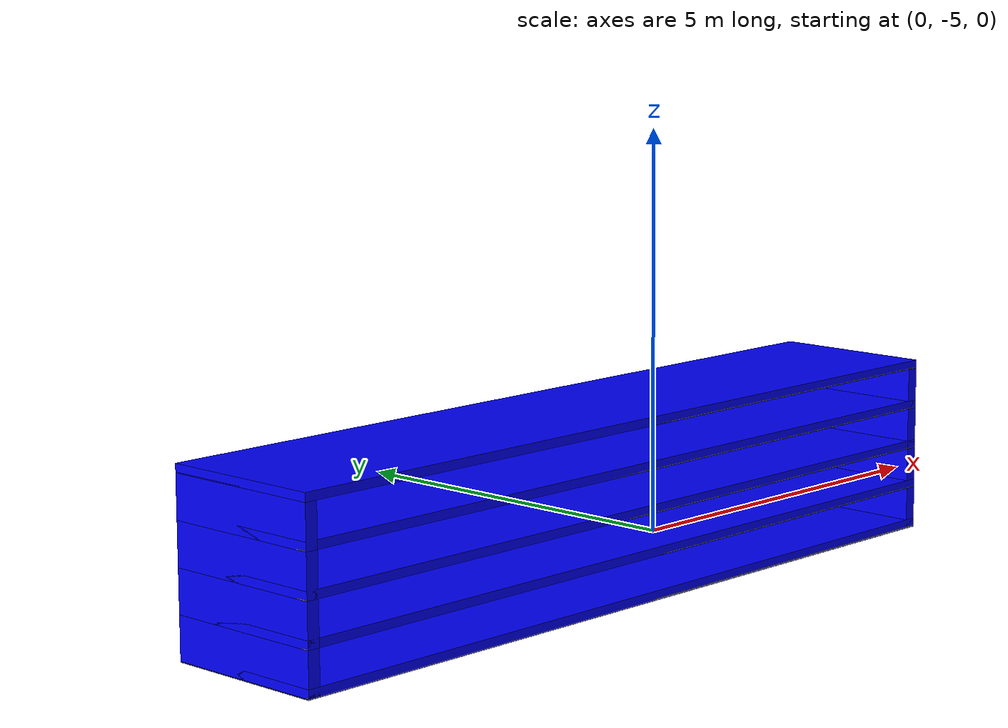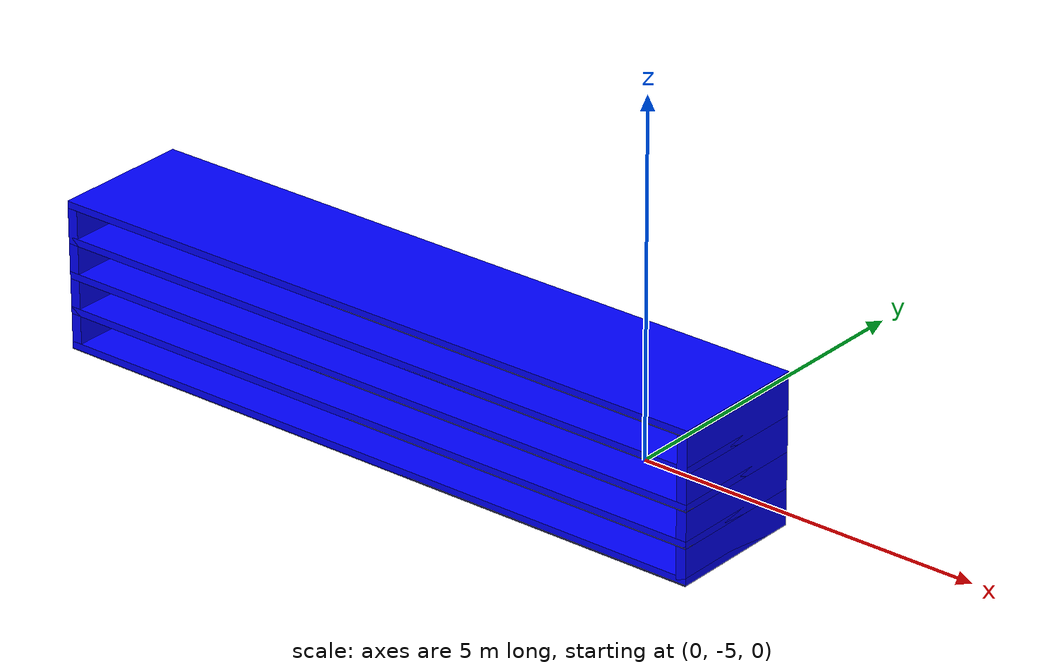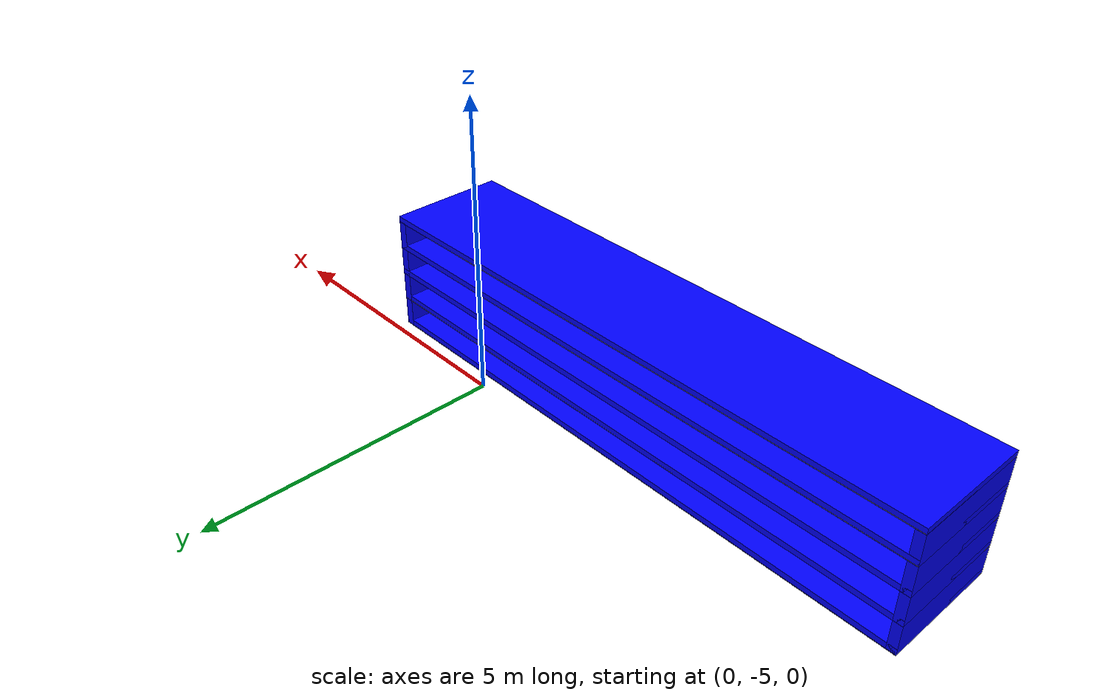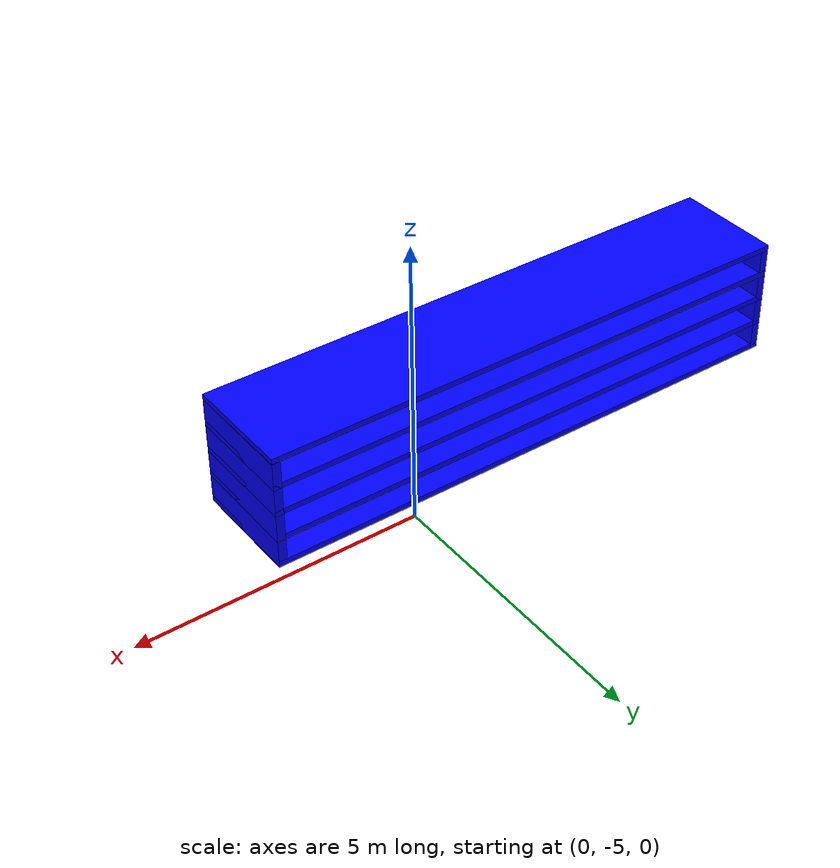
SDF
<?xml version='1.0'?>
<sdf version='1.6'>
  <model name='blue_shelf'>
    <pose frame=''>-2.626 -6.234 0 0 -0 0</pose>
    <link name='Floor_18'>
      <collision name='Floor_18_Collision'>
        <geometry>
          <box>
            <size>10 2 0.1</size>
          </box>
        </geometry>
        <pose frame=''>0 0 0.05 0 -0 0</pose>
      </collision>
      <visual name='Floor_18_Visual'>
        <pose frame=''>0 0 0.05 0 -0 0</pose>
        <geometry>
          <box>
            <size>10 2 0.1</size>
          </box>
        </geometry>
        <material>
          <script>
            <uri>file://media/materials/scripts/gazebo.material</uri>
            <name>Gazebo/Grey</name>
          </script>
          <ambient>0 0 1 1</ambient>
        </material>
      </visual>
      <pose frame=''>0 0 0.01 0 -0 0</pose>
    </link>
    <link name='Floor_23'>
      <collision name='Floor_23_Collision'>
        <geometry>
          <box>
            <size>10 2 0.1</size>
          </box>
        </geometry>
        <pose frame=''>0 0 0.05 0 -0 0</pose>
      </collision>
      <visual name='Floor_23_Visual'>
        <pose frame=''>0 0 0.05 0 -0 0</pose>
        <geometry>
          <box>
            <size>10 2 0.1</size>
          </box>
        </geometry>
        <material>
          <script>
            <uri>file://media/materials/scripts/gazebo.material</uri>
            <name>Gazebo/Grey</name>
          </script>
          <ambient>0 0 1 1</ambient>
        </material>
      </visual>
      <pose frame=''>0 0 0.51 0 -0 0</pose>
    </link>
    <link name='Floor_24'>
      <collision name='Floor_24_Collision'>
        <geometry>
          <box>
            <size>10 2 0.1</size>
          </box>
        </geometry>
        <pose frame=''>0 0 0.05 0 -0 0</pose>
      </collision>
      <visual name='Floor_24_Visual'>
        <pose frame=''>0 0 0.05 0 -0 0</pose>
        <geometry>
          <box>
            <size>10 2 0.1</size>
          </box>
        </geometry>
        <material>
          <script>
            <uri>file://media/materials/scripts/gazebo.material</uri>
            <name>Gazebo/Grey</name>
          </script>
          <ambient>0 0 1 1</ambient>
        </material>
      </visual>
      <pose frame=''>0 0 1.01 0 -0 0</pose>
    </link>
    <link name='Floor_25'>
      <collision name='Floor_25_Collision'>
        <geometry>
          <box>
            <size>10 2 0.1</size>
          </box>
        </geometry>
        <pose frame=''>0 0 0.05 0 -0 0</pose>
      </collision>
      <visual name='Floor_25_Visual'>
        <pose frame=''>0 0 0.05 0 -0 0</pose>
        <geometry>
          <box>
            <size>10 2 0.1</size>
          </box>
        </geometry>
        <material>
          <script>
            <uri>file://media/materials/scripts/gazebo.material</uri>
            <name>Gazebo/Grey</name>
          </script>
          <ambient>0 0 1 1</ambient>
        </material>
      </visual>
      <pose frame=''>0 0 1.51 0 -0 0</pose>
    </link>
    <link name='Floor_26'>
      <collision name='Floor_26_Collision'>
        <geometry>
          <box>
            <size>10 2 0.1</size>
          </box>
        </geometry>
        <pose frame=''>0 0 0.05 0 -0 0</pose>
      </collision>
      <visual name='Floor_26_Visual'>
        <pose frame=''>0 0 0.05 0 -0 0</pose>
        <geometry>
          <box>
            <size>10 2 0.1</size>
          </box>
        </geometry>
        <material>
          <script>
            <uri>file://media/materials/scripts/gazebo.material</uri>
            <name>Gazebo/Grey</name>
          </script>
          <ambient>0 0 1 1</ambient>
        </material>
      </visual>
      <pose frame=''>0 0 2.01 0 -0 0</pose>
    </link>
    <link name='Wall_111'>
      <collision name='Wall_111_Collision'>
        <geometry>
          <box>
            <size>10 0.15 0.01</size>
          </box>
        </geometry>
        <pose frame=''>0 0 0.005 0 -0 0</pose>
      </collision>
      <visual name='Wall_111_Visual'>
        <pose frame=''>0 0 0.005 0 -0 0</pose>
        <geometry>
          <box>
            <size>10 0.15 0.01</size>
          </box>
        </geometry>
        <material>
          <script>
            <uri>file://media/materials/scripts/gazebo.material</uri>
            <name>Gazebo/Grey</name>
          </script>
          <ambient>1 1 1 1</ambient>
        </material>
      </visual>
      <pose frame=''>0 0.925 0.51 0 -0 0</pose>
    </link>
    <link name='Wall_112'>
      <collision name='Wall_112_Collision'>
        <geometry>
          <box>
            <size>2 0.15 0.5</size>
          </box>
        </geometry>
        <pose frame=''>0 0 0.25 0 -0 0</pose>
      </collision>
      <visual name='Wall_112_Visual'>
        <pose frame=''>0 0 0.25 0 -0 0</pose>
        <geometry>
          <box>
            <size>2 0.15 0.5</size>
          </box>
        </geometry>
        <material>
          <script>
            <uri>file://media/materials/scripts/gazebo.material</uri>
            <name>Gazebo/Grey</name>
          </script>
          <ambient>0 0 1 1</ambient>
        </material>
      </visual>
      <pose frame=''>4.925 0 0.51 0 0 -1.5708</pose>
    </link>
    <link name='Wall_113'>
      <collision name='Wall_113_Collision'>
        <geometry>
          <box>
            <size>10 0.15 0.01</size>
          </box>
        </geometry>
        <pose frame=''>0 0 0.005 0 -0 0</pose>
      </collision>
      <visual name='Wall_113_Visual'>
        <pose frame=''>0 0 0.005 0 -0 0</pose>
        <geometry>
          <box>
            <size>10 0.15 0.01</size>
          </box>
        </geometry>
        <material>
          <script>
            <uri>file://media/materials/scripts/gazebo.material</uri>
            <name>Gazebo/Grey</name>
          </script>
          <ambient>1 1 1 1</ambient>
        </material>
      </visual>
      <pose frame=''>0 -0.925 0.51 0 -0 3.14159</pose>
    </link>
    <link name='Wall_114'>
      <collision name='Wall_114_Collision'>
        <geometry>
          <box>
            <size>2 0.15 0.5</size>
          </box>
        </geometry>
        <pose frame=''>0 0 0.25 0 -0 0</pose>
      </collision>
      <visual name='Wall_114_Visual'>
        <pose frame=''>0 0 0.25 0 -0 0</pose>
        <geometry>
          <box>
            <size>2 0.15 0.5</size>
          </box>
        </geometry>
        <material>
          <script>
            <uri>file://media/materials/scripts/gazebo.material</uri>
            <name>Gazebo/Grey</name>
          </script>
          <ambient>0 0 1 1</ambient>
        </material>
      </visual>
      <pose frame=''>-4.925 0 0.51 0 -0 1.5708</pose>
    </link>
    <link name='Wall_115'>
      <collision name='Wall_115_Collision'>
        <geometry>
          <box>
            <size>10 0.15 0.01</size>
          </box>
        </geometry>
        <pose frame=''>0 0 0.005 0 -0 0</pose>
      </collision>
      <visual name='Wall_115_Visual'>
        <pose frame=''>0 0 0.005 0 -0 0</pose>
        <geometry>
          <box>
            <size>10 0.15 0.01</size>
          </box>
        </geometry>
        <material>
          <script>
            <uri>file://media/materials/scripts/gazebo.material</uri>
            <name>Gazebo/Grey</name>
          </script>
          <ambient>1 1 1 1</ambient>
        </material>
      </visual>
      <pose frame=''>0 0.925 1.01 0 -0 0</pose>
    </link>
    <link name='Wall_116'>
      <collision name='Wall_116_Collision'>
        <geometry>
          <box>
            <size>2 0.15 0.5</size>
          </box>
        </geometry>
        <pose frame=''>0 0 0.25 0 -0 0</pose>
      </collision>
      <visual name='Wall_116_Visual'>
        <pose frame=''>0 0 0.25 0 -0 0</pose>
        <geometry>
          <box>
            <size>2 0.15 0.5</size>
          </box>
        </geometry>
        <material>
          <script>
            <uri>file://media/materials/scripts/gazebo.material</uri>
            <name>Gazebo/Grey</name>
          </script>
          <ambient>0 0 1 1</ambient>
        </material>
      </visual>
      <pose frame=''>4.925 0 1.01 0 0 -1.5708</pose>
    </link>
    <link name='Wall_117'>
      <collision name='Wall_117_Collision'>
        <geometry>
          <box>
            <size>10 0.15 0.01</size>
          </box>
        </geometry>
        <pose frame=''>0 0 0.005 0 -0 0</pose>
      </collision>
      <visual name='Wall_117_Visual'>
        <pose frame=''>0 0 0.005 0 -0 0</pose>
        <geometry>
          <box>
            <size>10 0.15 0.01</size>
          </box>
        </geometry>
        <material>
          <script>
            <uri>file://media/materials/scripts/gazebo.material</uri>
            <name>Gazebo/Grey</name>
          </script>
          <ambient>1 1 1 1</ambient>
        </material>
      </visual>
      <pose frame=''>0 -0.925 1.01 0 -0 3.14159</pose>
    </link>
    <link name='Wall_118'>
      <collision name='Wall_118_Collision'>
        <geometry>
          <box>
            <size>2 0.15 0.5</size>
          </box>
        </geometry>
        <pose frame=''>0 0 0.25 0 -0 0</pose>
      </collision>
      <visual name='Wall_118_Visual'>
        <pose frame=''>0 0 0.25 0 -0 0</pose>
        <geometry>
          <box>
            <size>2 0.15 0.5</size>
          </box>
        </geometry>
        <material>
          <script>
            <uri>file://media/materials/scripts/gazebo.material</uri>
            <name>Gazebo/Grey</name>
          </script>
          <ambient>0 0 1 1</ambient>
        </material>
      </visual>
      <pose frame=''>-4.925 0 1.01 0 -0 1.5708</pose>
    </link>
    <link name='Wall_119'>
      <collision name='Wall_119_Collision'>
        <geometry>
          <box>
            <size>10 0.15 0.01</size>
          </box>
        </geometry>
        <pose frame=''>0 0 0.005 0 -0 0</pose>
      </collision>
      <visual name='Wall_119_Visual'>
        <pose frame=''>0 0 0.005 0 -0 0</pose>
        <geometry>
          <box>
            <size>10 0.15 0.01</size>
          </box>
        </geometry>
        <material>
          <script>
            <uri>file://media/materials/scripts/gazebo.material</uri>
            <name>Gazebo/Grey</name>
          </script>
          <ambient>1 1 1 1</ambient>
        </material>
      </visual>
      <pose frame=''>0 0.925 1.51 0 -0 0</pose>
    </link>
    <link name='Wall_120'>
      <collision name='Wall_120_Collision'>
        <geometry>
          <box>
            <size>2 0.15 0.5</size>
          </box>
        </geometry>
        <pose frame=''>0 0 0.25 0 -0 0</pose>
      </collision>
      <visual name='Wall_120_Visual'>
        <pose frame=''>0 0 0.25 0 -0 0</pose>
        <geometry>
          <box>
            <size>2 0.15 0.5</size>
          </box>
        </geometry>
        <material>
          <script>
            <uri>file://media/materials/scripts/gazebo.material</uri>
            <name>Gazebo/Grey</name>
          </script>
          <ambient>0 0 1 1</ambient>
        </material>
      </visual>
      <pose frame=''>4.925 0 1.51 0 0 -1.5708</pose>
    </link>
    <link name='Wall_121'>
      <collision name='Wall_121_Collision'>
        <geometry>
          <box>
            <size>10 0.15 0.01</size>
          </box>
        </geometry>
        <pose frame=''>0 0 0.005 0 -0 0</pose>
      </collision>
      <visual name='Wall_121_Visual'>
        <pose frame=''>0 0 0.005 0 -0 0</pose>
        <geometry>
          <box>
            <size>10 0.15 0.01</size>
          </box>
        </geometry>
        <material>
          <script>
            <uri>file://media/materials/scripts/gazebo.material</uri>
            <name>Gazebo/Grey</name>
          </script>
          <ambient>1 1 1 1</ambient>
        </material>
      </visual>
      <pose frame=''>0 -0.925 1.51 0 -0 3.14159</pose>
    </link>
    <link name='Wall_122'>
      <collision name='Wall_122_Collision'>
        <geometry>
          <box>
            <size>2 0.15 0.5</size>
          </box>
        </geometry>
        <pose frame=''>0 0 0.25 0 -0 0</pose>
      </collision>
      <visual name='Wall_122_Visual'>
        <pose frame=''>0 0 0.25 0 -0 0</pose>
        <geometry>
          <box>
            <size>2 0.15 0.5</size>
          </box>
        </geometry>
        <material>
          <script>
            <uri>file://media/materials/scripts/gazebo.material</uri>
            <name>Gazebo/Grey</name>
          </script>
          <ambient>0 0 1 1</ambient>
        </material>
      </visual>
      <pose frame=''>-4.925 0 1.51 0 -0 1.5708</pose>
    </link>
    <link name='Wall_123'>
      <collision name='Wall_123_Collision'>
        <geometry>
          <box>
            <size>10 0.15 0.01</size>
          </box>
        </geometry>
        <pose frame=''>0 0 0.005 0 -0 0</pose>
      </collision>
      <visual name='Wall_123_Visual'>
        <pose frame=''>0 0 0.005 0 -0 0</pose>
        <geometry>
          <box>
            <size>10 0.15 0.01</size>
          </box>
        </geometry>
        <material>
          <script>
            <uri>file://media/materials/scripts/gazebo.material</uri>
            <name>Gazebo/Grey</name>
          </script>
          <ambient>1 1 1 1</ambient>
        </material>
      </visual>
      <pose frame=''>0 0.925 2.01 0 -0 0</pose>
    </link>
    <link name='Wall_124'>
      <collision name='Wall_124_Collision'>
        <geometry>
          <box>
            <size>2 0.15 0.01</size>
          </box>
        </geometry>
        <pose frame=''>0 0 0.005 0 -0 0</pose>
      </collision>
      <visual name='Wall_124_Visual'>
        <pose frame=''>0 0 0.005 0 -0 0</pose>
        <geometry>
          <box>
            <size>2 0.15 0.01</size>
          </box>
        </geometry>
        <material>
          <script>
            <uri>file://media/materials/scripts/gazebo.material</uri>
            <name>Gazebo/Grey</name>
          </script>
          <ambient>0 0 1 1</ambient>
        </material>
      </visual>
      <pose frame=''>4.925 0 2.01 0 0 -1.5708</pose>
    </link>
    <link name='Wall_125'>
      <collision name='Wall_125_Collision'>
        <geometry>
          <box>
            <size>10 0.15 0.01</size>
          </box>
        </geometry>
        <pose frame=''>0 0 0.005 0 -0 0</pose>
      </collision>
      <visual name='Wall_125_Visual'>
        <pose frame=''>0 0 0.005 0 -0 0</pose>
        <geometry>
          <box>
            <size>10 0.15 0.01</size>
          </box>
        </geometry>
        <material>
          <script>
            <uri>file://media/materials/scripts/gazebo.material</uri>
            <name>Gazebo/Grey</name>
          </script>
          <ambient>1 1 1 1</ambient>
        </material>
      </visual>
      <pose frame=''>0 -0.925 2.01 0 -0 3.14159</pose>
    </link>
    <link name='Wall_126'>
      <collision name='Wall_126_Collision'>
        <geometry>
          <box>
            <size>2 0.15 0.01</size>
          </box>
        </geometry>
        <pose frame=''>0 0 0.005 0 -0 0</pose>
      </collision>
      <visual name='Wall_126_Visual'>
        <pose frame=''>0 0 0.005 0 -0 0</pose>
        <geometry>
          <box>
            <size>2 0.15 0.01</size>
          </box>
        </geometry>
        <material>
          <script>
            <uri>file://media/materials/scripts/gazebo.material</uri>
            <name>Gazebo/Grey</name>
          </script>
          <ambient>0 0 1 1</ambient>
        </material>
      </visual>
      <pose frame=''>-4.925 0 2.01 0 -0 1.5708</pose>
    </link>
    <link name='Wall_60'>
      <collision name='Wall_60_Collision'>
        <geometry>
          <box>
            <size>10 0.15 0.01</size>
          </box>
        </geometry>
        <pose frame=''>0 0 0.005 0 -0 0</pose>
      </collision>
      <visual name='Wall_60_Visual'>
        <pose frame=''>0 0 0.005 0 -0 0</pose>
        <geometry>
          <box>
            <size>10 0.15 0.01</size>
          </box>
        </geometry>
        <material>
          <script>
            <uri>file://media/materials/scripts/gazebo.material</uri>
            <name>Gazebo/Grey</name>
          </script>
          <ambient>0 0 0.498039 1</ambient>
        </material>
      </visual>
      <pose frame=''>0 0.925 0 0 -0 0</pose>
    </link>
    <link name='Wall_61'>
      <collision name='Wall_61_Collision'>
        <geometry>
          <box>
            <size>2 0.15 0.01</size>
          </box>
        </geometry>
        <pose frame=''>0 0 0.005 0 -0 0</pose>
      </collision>
      <visual name='Wall_61_Visual'>
        <pose frame=''>0 0 0.005 0 -0 0</pose>
        <geometry>
          <box>
            <size>2 0.15 0.01</size>
          </box>
        </geometry>
        <material>
          <script>
            <uri>file://media/materials/scripts/gazebo.material</uri>
            <name>Gazebo/Grey</name>
          </script>
          <ambient>0 0 0.498039 1</ambient>
        </material>
      </visual>
      <pose frame=''>4.925 0 0 0 0 -1.5708</pose>
    </link>
    <link name='Wall_62'>
      <collision name='Wall_62_Collision'>
        <geometry>
          <box>
            <size>10 0.15 0.01</size>
          </box>
        </geometry>
        <pose frame=''>0 0 0.005 0 -0 0</pose>
      </collision>
      <visual name='Wall_62_Visual'>
        <pose frame=''>0 0 0.005 0 -0 0</pose>
        <geometry>
          <box>
            <size>10 0.15 0.01</size>
          </box>
        </geometry>
        <material>
          <script>
            <uri>file://media/materials/scripts/gazebo.material</uri>
            <name>Gazebo/Grey</name>
          </script>
          <ambient>0 0 0.498039 1</ambient>
        </material>
      </visual>
      <pose frame=''>0 -0.925 0 0 -0 3.14159</pose>
    </link>
    <link name='Wall_63'>
      <collision name='Wall_63_Collision'>
        <geometry>
          <box>
            <size>2 0.15 0.01</size>
          </box>
        </geometry>
        <pose frame=''>0 0 0.005 0 -0 0</pose>
      </collision>
      <visual name='Wall_63_Visual'>
        <pose frame=''>0 0 0.005 0 -0 0</pose>
        <geometry>
          <box>
            <size>2 0.15 0.01</size>
          </box>
        </geometry>
        <material>
          <script>
            <uri>file://media/materials/scripts/gazebo.material</uri>
            <name>Gazebo/Grey</name>
          </script>
          <ambient>0 0 0.498039 1</ambient>
        </material>
      </visual>
      <pose frame=''>-4.925 0 0 0 -0 1.5708</pose>
    </link>
    <link name='Wall_91'>
      <collision name='Wall_91_Collision'>
        <geometry>
          <box>
            <size>10 0.15 0.01</size>
          </box>
        </geometry>
        <pose frame=''>0 0 0.005 0 -0 0</pose>
      </collision>
      <visual name='Wall_91_Visual'>
        <pose frame=''>0 0 0.005 0 -0 0</pose>
        <geometry>
          <box>
            <size>10 0.15 0.01</size>
          </box>
        </geometry>
        <material>
          <script>
            <uri>file://media/materials/scripts/gazebo.material</uri>
            <name>Gazebo/Grey</name>
          </script>
          <ambient>1 1 1 1</ambient>
        </material>
      </visual>
      <pose frame=''>0 0.925 0.01 0 -0 0</pose>
    </link>
    <link name='Wall_92'>
      <collision name='Wall_92_Collision'>
        <geometry>
          <box>
            <size>2 0.15 0.5</size>
          </box>
        </geometry>
        <pose frame=''>0 0 0.25 0 -0 0</pose>
      </collision>
      <visual name='Wall_92_Visual'>
        <pose frame=''>0 0 0.25 0 -0 0</pose>
        <geometry>
          <box>
            <size>2 0.15 0.5</size>
          </box>
        </geometry>
        <material>
          <script>
            <uri>file://media/materials/scripts/gazebo.material</uri>
            <name>Gazebo/Grey</name>
          </script>
          <ambient>0 0 1 1</ambient>
        </material>
      </visual>
      <pose frame=''>4.925 0 0.01 0 0 -1.5708</pose>
    </link>
    <link name='Wall_93'>
      <collision name='Wall_93_Collision'>
        <geometry>
          <box>
            <size>10 0.15 0.01</size>
          </box>
        </geometry>
        <pose frame=''>0 0 0.005 0 -0 0</pose>
      </collision>
      <visual name='Wall_93_Visual'>
        <pose frame=''>0 0 0.005 0 -0 0</pose>
        <geometry>
          <box>
            <size>10 0.15 0.01</size>
          </box>
        </geometry>
        <material>
          <script>
            <uri>file://media/materials/scripts/gazebo.material</uri>
            <name>Gazebo/Grey</name>
          </script>
          <ambient>1 1 1 1</ambient>
        </material>
      </visual>
      <pose frame=''>0 -0.925 0.01 0 -0 3.14159</pose>
    </link>
    <link name='Wall_94'>
      <collision name='Wall_94_Collision'>
        <geometry>
          <box>
            <size>2 0.15 0.5</size>
          </box>
        </geometry>
        <pose frame=''>0 0 0.25 0 -0 0</pose>
      </collision>
      <visual name='Wall_94_Visual'>
        <pose frame=''>0 0 0.25 0 -0 0</pose>
        <geometry>
          <box>
            <size>2 0.15 0.5</size>
          </box>
        </geometry>
        <material>
          <script>
            <uri>file://media/materials/scripts/gazebo.material</uri>
            <name>Gazebo/Grey</name>
          </script>
          <ambient>0 0 1 1</ambient>
        </material>
      </visual>
      <pose frame=''>-4.925 0 0.01 0 -0 1.5708</pose>
    </link>
    <static>1</static>
  </model>
</sdf>
